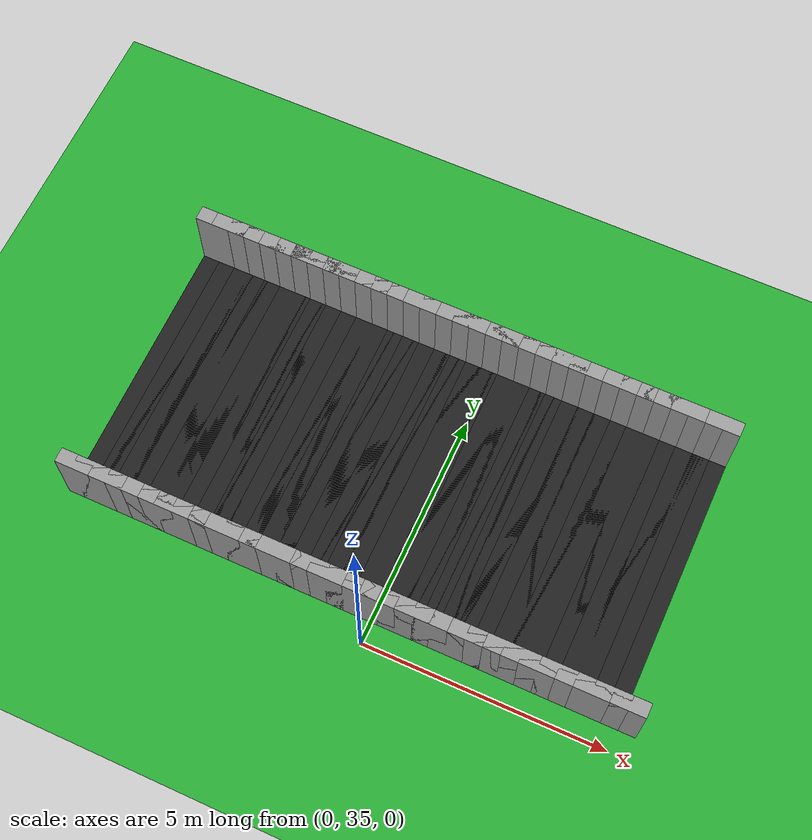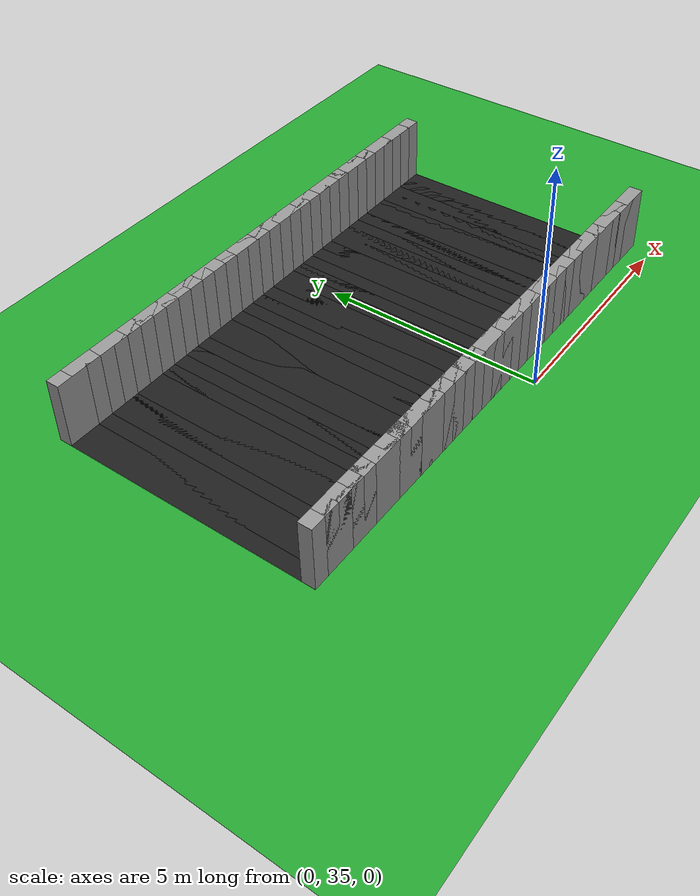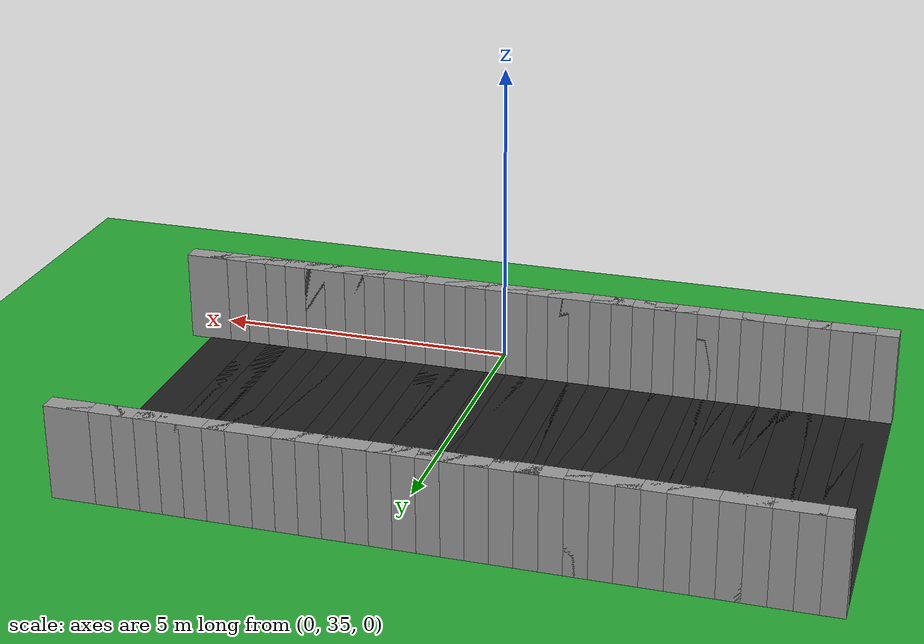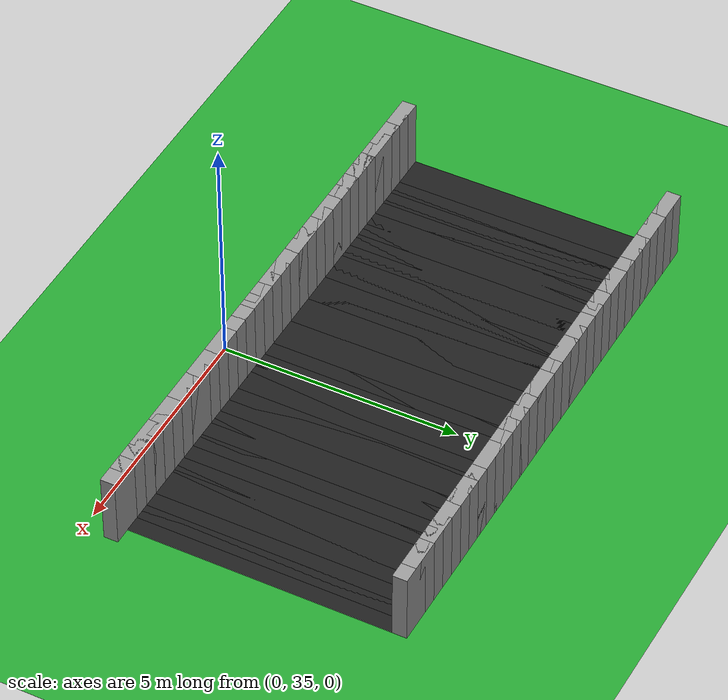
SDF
<sdf version="1.6">
 <world name="loop_speedloop">
  <include><uri>model://sun</uri></include>
  <model name="ground_plane">
   <static>true</static>
   <link name="link">
    <collision name="collision">
     <surface><friction><ode><mu>100</mu><mu2>50</mu2></ode></friction></surface>
     <geometry><plane><normal>0 0 1</normal><size>120 120</size></plane></geometry>
    </collision>
    <visual name="visual">
     <geometry><plane><normal>0 0 1</normal><size>120 120</size></plane></geometry>
     <material>
      <script><uri>file://media/materials/scripts/gazebo.material</uri><name>Gazebo/Green</name></script>
     </material>
    </visual>
   </link>
  </model>
  <model name="curbL_338">
   <static>true</static>
   <pose>5.026 35.602 0.750 0 0 3.14159</pose>
   <link name="link">
    <collision name="collision"><geometry><box><size>0.710 0.300 1.500</size></box></geometry></collision>
    <visual name="visual">
     <geometry><box><size>0.710 0.300 1.500</size></box></geometry>
     <material>
      <script><uri>file://media/materials/scripts/gazebo.material</uri><name>Gazebo/Grey</name></script>
     </material>
    </visual>
   </link>
  </model>
  <model name="asphalt_339">
   <static>true</static>
   <pose>4.676 38.502 0.005 0 0 3.14159</pose>
   <link name="link">
    <visual name="visual">
     <geometry><box><size>0.710 5.500 0.010</size></box></geometry>
     <material>
      <script><uri>file://media/materials/scripts/gazebo.material</uri><name>Gazebo/Black</name></script>
     </material>
    </visual>
   </link>
  </model>
  <model name="curbL_339">
   <static>true</static>
   <pose>4.676 35.602 0.750 0 0 3.14159</pose>
   <link name="link">
    <collision name="collision"><geometry><box><size>0.710 0.300 1.500</size></box></geometry></collision>
    <visual name="visual">
     <geometry><box><size>0.710 0.300 1.500</size></box></geometry>
     <material>
      <script><uri>file://media/materials/scripts/gazebo.material</uri><name>Gazebo/Grey</name></script>
     </material>
    </visual>
   </link>
  </model>
  <model name="curbR_339">
   <static>true</static>
   <pose>4.676 41.402 0.750 0 0 3.14159</pose>
   <link name="link">
    <collision name="collision"><geometry><box><size>0.710 0.300 1.500</size></box></geometry></collision>
    <visual name="visual">
     <geometry><box><size>0.710 0.300 1.500</size></box></geometry>
     <material>
      <script><uri>file://media/materials/scripts/gazebo.material</uri><name>Gazebo/Grey</name></script>
     </material>
    </visual>
   </link>
  </model>
  <model name="asphalt_340">
   <static>true</static>
   <pose>4.326 38.502 0.005 0 0 3.14159</pose>
   <link name="link">
    <visual name="visual">
     <geometry><box><size>0.710 5.500 0.010</size></box></geometry>
     <material>
      <script><uri>file://media/materials/scripts/gazebo.material</uri><name>Gazebo/Black</name></script>
     </material>
    </visual>
   </link>
  </model>
  <model name="curbL_340">
   <static>true</static>
   <pose>4.326 35.602 0.750 0 0 3.14159</pose>
   <link name="link">
    <collision name="collision"><geometry><box><size>0.710 0.300 1.500</size></box></geometry></collision>
    <visual name="visual">
     <geometry><box><size>0.710 0.300 1.500</size></box></geometry>
     <material>
      <script><uri>file://media/materials/scripts/gazebo.material</uri><name>Gazebo/Grey</name></script>
     </material>
    </visual>
   </link>
  </model>
  <model name="curbR_340">
   <static>true</static>
   <pose>4.326 41.402 0.750 0 0 3.14159</pose>
   <link name="link">
    <collision name="collision"><geometry><box><size>0.710 0.300 1.500</size></box></geometry></collision>
    <visual name="visual">
     <geometry><box><size>0.710 0.300 1.500</size></box></geometry>
     <material>
      <script><uri>file://media/materials/scripts/gazebo.material</uri><name>Gazebo/Grey</name></script>
     </material>
    </visual>
   </link>
  </model>
  <model name="asphalt_341">
   <static>true</static>
   <pose>3.976 38.502 0.005 0 0 3.14159</pose>
   <link name="link">
    <visual name="visual">
     <geometry><box><size>0.710 5.500 0.010</size></box></geometry>
     <material>
      <script><uri>file://media/materials/scripts/gazebo.material</uri><name>Gazebo/Black</name></script>
     </material>
    </visual>
   </link>
  </model>
  <model name="curbL_341">
   <static>true</static>
   <pose>3.976 35.602 0.750 0 0 3.14159</pose>
   <link name="link">
    <collision name="collision"><geometry><box><size>0.710 0.300 1.500</size></box></geometry></collision>
    <visual name="visual">
     <geometry><box><size>0.710 0.300 1.500</size></box></geometry>
     <material>
      <script><uri>file://media/materials/scripts/gazebo.material</uri><name>Gazebo/Grey</name></script>
     </material>
    </visual>
   </link>
  </model>
  <model name="curbR_341">
   <static>true</static>
   <pose>3.976 41.402 0.750 0 0 3.14159</pose>
   <link name="link">
    <collision name="collision"><geometry><box><size>0.710 0.300 1.500</size></box></geometry></collision>
    <visual name="visual">
     <geometry><box><size>0.710 0.300 1.500</size></box></geometry>
     <material>
      <script><uri>file://media/materials/scripts/gazebo.material</uri><name>Gazebo/Grey</name></script>
     </material>
    </visual>
   </link>
  </model>
  <model name="asphalt_342">
   <static>true</static>
   <pose>3.626 38.502 0.005 0 0 3.14159</pose>
   <link name="link">
    <visual name="visual">
     <geometry><box><size>0.710 5.500 0.010</size></box></geometry>
     <material>
      <script><uri>file://media/materials/scripts/gazebo.material</uri><name>Gazebo/Black</name></script>
     </material>
    </visual>
   </link>
  </model>
  <model name="curbL_342">
   <static>true</static>
   <pose>3.626 35.602 0.750 0 0 3.14159</pose>
   <link name="link">
    <collision name="collision"><geometry><box><size>0.710 0.300 1.500</size></box></geometry></collision>
    <visual name="visual">
     <geometry><box><size>0.710 0.300 1.500</size></box></geometry>
     <material>
      <script><uri>file://media/materials/scripts/gazebo.material</uri><name>Gazebo/Grey</name></script>
     </material>
    </visual>
   </link>
  </model>
  <model name="curbR_342">
   <static>true</static>
   <pose>3.626 41.402 0.750 0 0 3.14159</pose>
   <link name="link">
    <collision name="collision"><geometry><box><size>0.710 0.300 1.500</size></box></geometry></collision>
    <visual name="visual">
     <geometry><box><size>0.710 0.300 1.500</size></box></geometry>
     <material>
      <script><uri>file://media/materials/scripts/gazebo.material</uri><name>Gazebo/Grey</name></script>
     </material>
    </visual>
   </link>
  </model>
  <model name="asphalt_343">
   <static>true</static>
   <pose>3.276 38.502 0.005 0 0 3.14159</pose>
   <link name="link">
    <visual name="visual">
     <geometry><box><size>0.710 5.500 0.010</size></box></geometry>
     <material>
      <script><uri>file://media/materials/scripts/gazebo.material</uri><name>Gazebo/Black</name></script>
     </material>
    </visual>
   </link>
  </model>
  <model name="curbL_343">
   <static>true</static>
   <pose>3.276 35.602 0.750 0 0 3.14159</pose>
   <link name="link">
    <collision name="collision"><geometry><box><size>0.710 0.300 1.500</size></box></geometry></collision>
    <visual name="visual">
     <geometry><box><size>0.710 0.300 1.500</size></box></geometry>
     <material>
      <script><uri>file://media/materials/scripts/gazebo.material</uri><name>Gazebo/Grey</name></script>
     </material>
    </visual>
   </link>
  </model>
  <model name="curbR_343">
   <static>true</static>
   <pose>3.276 41.402 0.750 0 0 3.14159</pose>
   <link name="link">
    <collision name="collision"><geometry><box><size>0.710 0.300 1.500</size></box></geometry></collision>
    <visual name="visual">
     <geometry><box><size>0.710 0.300 1.500</size></box></geometry>
     <material>
      <script><uri>file://media/materials/scripts/gazebo.material</uri><name>Gazebo/Grey</name></script>
     </material>
    </visual>
   </link>
  </model>
  <model name="asphalt_344">
   <static>true</static>
   <pose>2.926 38.502 0.005 0 0 3.14159</pose>
   <link name="link">
    <visual name="visual">
     <geometry><box><size>0.710 5.500 0.010</size></box></geometry>
     <material>
      <script><uri>file://media/materials/scripts/gazebo.material</uri><name>Gazebo/Black</name></script>
     </material>
    </visual>
   </link>
  </model>
  <model name="curbL_344">
   <static>true</static>
   <pose>2.926 35.602 0.750 0 0 3.14159</pose>
   <link name="link">
    <collision name="collision"><geometry><box><size>0.710 0.300 1.500</size></box></geometry></collision>
    <visual name="visual">
     <geometry><box><size>0.710 0.300 1.500</size></box></geometry>
     <material>
      <script><uri>file://media/materials/scripts/gazebo.material</uri><name>Gazebo/Grey</name></script>
     </material>
    </visual>
   </link>
  </model>
  <model name="curbR_344">
   <static>true</static>
   <pose>2.926 41.402 0.750 0 0 3.14159</pose>
   <link name="link">
    <collision name="collision"><geometry><box><size>0.710 0.300 1.500</size></box></geometry></collision>
    <visual name="visual">
     <geometry><box><size>0.710 0.300 1.500</size></box></geometry>
     <material>
      <script><uri>file://media/materials/scripts/gazebo.material</uri><name>Gazebo/Grey</name></script>
     </material>
    </visual>
   </link>
  </model>
  <model name="asphalt_345">
   <static>true</static>
   <pose>2.576 38.502 0.005 0 0 3.14159</pose>
   <link name="link">
    <visual name="visual">
     <geometry><box><size>0.710 5.500 0.010</size></box></geometry>
     <material>
      <script><uri>file://media/materials/scripts/gazebo.material</uri><name>Gazebo/Black</name></script>
     </material>
    </visual>
   </link>
  </model>
  <model name="curbL_345">
   <static>true</static>
   <pose>2.576 35.602 0.750 0 0 3.14159</pose>
   <link name="link">
    <collision name="collision"><geometry><box><size>0.710 0.300 1.500</size></box></geometry></collision>
    <visual name="visual">
     <geometry><box><size>0.710 0.300 1.500</size></box></geometry>
     <material>
      <script><uri>file://media/materials/scripts/gazebo.material</uri><name>Gazebo/Grey</name></script>
     </material>
    </visual>
   </link>
  </model>
  <model name="curbR_345">
   <static>true</static>
   <pose>2.576 41.402 0.750 0 0 3.14159</pose>
   <link name="link">
    <collision name="collision"><geometry><box><size>0.710 0.300 1.500</size></box></geometry></collision>
    <visual name="visual">
     <geometry><box><size>0.710 0.300 1.500</size></box></geometry>
     <material>
      <script><uri>file://media/materials/scripts/gazebo.material</uri><name>Gazebo/Grey</name></script>
     </material>
    </visual>
   </link>
  </model>
  <model name="asphalt_346">
   <static>true</static>
   <pose>2.226 38.502 0.005 0 0 3.14159</pose>
   <link name="link">
    <visual name="visual">
     <geometry><box><size>0.710 5.500 0.010</size></box></geometry>
     <material>
      <script><uri>file://media/materials/scripts/gazebo.material</uri><name>Gazebo/Black</name></script>
     </material>
    </visual>
   </link>
  </model>
  <model name="curbL_346">
   <static>true</static>
   <pose>2.226 35.602 0.750 0 0 3.14159</pose>
   <link name="link">
    <collision name="collision"><geometry><box><size>0.710 0.300 1.500</size></box></geometry></collision>
    <visual name="visual">
     <geometry><box><size>0.710 0.300 1.500</size></box></geometry>
     <material>
      <script><uri>file://media/materials/scripts/gazebo.material</uri><name>Gazebo/Grey</name></script>
     </material>
    </visual>
   </link>
  </model>
  <model name="curbR_346">
   <static>true</static>
   <pose>2.226 41.402 0.750 0 0 3.14159</pose>
   <link name="link">
    <collision name="collision"><geometry><box><size>0.710 0.300 1.500</size></box></geometry></collision>
    <visual name="visual">
     <geometry><box><size>0.710 0.300 1.500</size></box></geometry>
     <material>
      <script><uri>file://media/materials/scripts/gazebo.material</uri><name>Gazebo/Grey</name></script>
     </material>
    </visual>
   </link>
  </model>
  <model name="asphalt_347">
   <static>true</static>
   <pose>1.876 38.502 0.005 0 0 3.14159</pose>
   <link name="link">
    <visual name="visual">
     <geometry><box><size>0.710 5.500 0.010</size></box></geometry>
     <material>
      <script><uri>file://media/materials/scripts/gazebo.material</uri><name>Gazebo/Black</name></script>
     </material>
    </visual>
   </link>
  </model>
  <model name="curbL_347">
   <static>true</static>
   <pose>1.876 35.602 0.750 0 0 3.14159</pose>
   <link name="link">
    <collision name="collision"><geometry><box><size>0.710 0.300 1.500</size></box></geometry></collision>
    <visual name="visual">
     <geometry><box><size>0.710 0.300 1.500</size></box></geometry>
     <material>
      <script><uri>file://media/materials/scripts/gazebo.material</uri><name>Gazebo/Grey</name></script>
     </material>
    </visual>
   </link>
  </model>
  <model name="curbR_347">
   <static>true</static>
   <pose>1.876 41.402 0.750 0 0 3.14159</pose>
   <link name="link">
    <collision name="collision"><geometry><box><size>0.710 0.300 1.500</size></box></geometry></collision>
    <visual name="visual">
     <geometry><box><size>0.710 0.300 1.500</size></box></geometry>
     <material>
      <script><uri>file://media/materials/scripts/gazebo.material</uri><name>Gazebo/Grey</name></script>
     </material>
    </visual>
   </link>
  </model>
  <model name="asphalt_348">
   <static>true</static>
   <pose>1.526 38.502 0.005 0 0 3.14159</pose>
   <link name="link">
    <visual name="visual">
     <geometry><box><size>0.710 5.500 0.010</size></box></geometry>
     <material>
      <script><uri>file://media/materials/scripts/gazebo.material</uri><name>Gazebo/Black</name></script>
     </material>
    </visual>
   </link>
  </model>
  <model name="curbL_348">
   <static>true</static>
   <pose>1.526 35.602 0.750 0 0 3.14159</pose>
   <link name="link">
    <collision name="collision"><geometry><box><size>0.710 0.300 1.500</size></box></geometry></collision>
    <visual name="visual">
     <geometry><box><size>0.710 0.300 1.500</size></box></geometry>
     <material>
      <script><uri>file://media/materials/scripts/gazebo.material</uri><name>Gazebo/Grey</name></script>
     </material>
    </visual>
   </link>
  </model>
  <model name="curbR_348">
   <static>true</static>
   <pose>1.526 41.402 0.750 0 0 3.14159</pose>
   <link name="link">
    <collision name="collision"><geometry><box><size>0.710 0.300 1.500</size></box></geometry></collision>
    <visual name="visual">
     <geometry><box><size>0.710 0.300 1.500</size></box></geometry>
     <material>
      <script><uri>file://media/materials/scripts/gazebo.material</uri><name>Gazebo/Grey</name></script>
     </material>
    </visual>
   </link>
  </model>
  <model name="asphalt_349">
   <static>true</static>
   <pose>1.176 38.502 0.005 0 0 3.14159</pose>
   <link name="link">
    <visual name="visual">
     <geometry><box><size>0.710 5.500 0.010</size></box></geometry>
     <material>
      <script><uri>file://media/materials/scripts/gazebo.material</uri><name>Gazebo/Black</name></script>
     </material>
    </visual>
   </link>
  </model>
  <model name="curbL_349">
   <static>true</static>
   <pose>1.176 35.602 0.750 0 0 3.14159</pose>
   <link name="link">
    <collision name="collision"><geometry><box><size>0.710 0.300 1.500</size></box></geometry></collision>
    <visual name="visual">
     <geometry><box><size>0.710 0.300 1.500</size></box></geometry>
     <material>
      <script><uri>file://media/materials/scripts/gazebo.material</uri><name>Gazebo/Grey</name></script>
     </material>
    </visual>
   </link>
  </model>
  <model name="curbR_349">
   <static>true</static>
   <pose>1.176 41.402 0.750 0 0 3.14159</pose>
   <link name="link">
    <collision name="collision"><geometry><box><size>0.710 0.300 1.500</size></box></geometry></collision>
    <visual name="visual">
     <geometry><box><size>0.710 0.300 1.500</size></box></geometry>
     <material>
      <script><uri>file://media/materials/scripts/gazebo.material</uri><name>Gazebo/Grey</name></script>
     </material>
    </visual>
   </link>
  </model>
  <model name="asphalt_350">
   <static>true</static>
   <pose>0.826 38.502 0.005 0 0 3.14159</pose>
   <link name="link">
    <visual name="visual">
     <geometry><box><size>0.710 5.500 0.010</size></box></geometry>
     <material>
      <script><uri>file://media/materials/scripts/gazebo.material</uri><name>Gazebo/Black</name></script>
     </material>
    </visual>
   </link>
  </model>
  <model name="curbL_350">
   <static>true</static>
   <pose>0.826 35.602 0.750 0 0 3.14159</pose>
   <link name="link">
    <collision name="collision"><geometry><box><size>0.710 0.300 1.500</size></box></geometry></collision>
    <visual name="visual">
     <geometry><box><size>0.710 0.300 1.500</size></box></geometry>
     <material>
      <script><uri>file://media/materials/scripts/gazebo.material</uri><name>Gazebo/Grey</name></script>
     </material>
    </visual>
   </link>
  </model>
  <model name="curbR_350">
   <static>true</static>
   <pose>0.826 41.402 0.750 0 0 3.14159</pose>
   <link name="link">
    <collision name="collision"><geometry><box><size>0.710 0.300 1.500</size></box></geometry></collision>
    <visual name="visual">
     <geometry><box><size>0.710 0.300 1.500</size></box></geometry>
     <material>
      <script><uri>file://media/materials/scripts/gazebo.material</uri><name>Gazebo/Grey</name></script>
     </material>
    </visual>
   </link>
  </model>
  <model name="asphalt_351">
   <static>true</static>
   <pose>0.476 38.502 0.005 0 0 3.14159</pose>
   <link name="link">
    <visual name="visual">
     <geometry><box><size>0.710 5.500 0.010</size></box></geometry>
     <material>
      <script><uri>file://media/materials/scripts/gazebo.material</uri><name>Gazebo/Black</name></script>
     </material>
    </visual>
   </link>
  </model>
  <model name="curbL_351">
   <static>true</static>
   <pose>0.476 35.602 0.750 0 0 3.14159</pose>
   <link name="link">
    <collision name="collision"><geometry><box><size>0.710 0.300 1.500</size></box></geometry></collision>
    <visual name="visual">
     <geometry><box><size>0.710 0.300 1.500</size></box></geometry>
     <material>
      <script><uri>file://media/materials/scripts/gazebo.material</uri><name>Gazebo/Grey</name></script>
     </material>
    </visual>
   </link>
  </model>
  <model name="curbR_351">
   <static>true</static>
   <pose>0.476 41.402 0.750 0 0 3.14159</pose>
   <link name="link">
    <collision name="collision"><geometry><box><size>0.710 0.300 1.500</size></box></geometry></collision>
    <visual name="visual">
     <geometry><box><size>0.710 0.300 1.500</size></box></geometry>
     <material>
      <script><uri>file://media/materials/scripts/gazebo.material</uri><name>Gazebo/Grey</name></script>
     </material>
    </visual>
   </link>
  </model>
  <model name="asphalt_352">
   <static>true</static>
   <pose>0.126 38.502 0.005 0 0 3.14159</pose>
   <link name="link">
    <visual name="visual">
     <geometry><box><size>0.710 5.500 0.010</size></box></geometry>
     <material>
      <script><uri>file://media/materials/scripts/gazebo.material</uri><name>Gazebo/Black</name></script>
     </material>
    </visual>
   </link>
  </model>
  <model name="curbL_352">
   <static>true</static>
   <pose>0.126 35.602 0.750 0 0 3.14159</pose>
   <link name="link">
    <collision name="collision"><geometry><box><size>0.710 0.300 1.500</size></box></geometry></collision>
    <visual name="visual">
     <geometry><box><size>0.710 0.300 1.500</size></box></geometry>
     <material>
      <script><uri>file://media/materials/scripts/gazebo.material</uri><name>Gazebo/Grey</name></script>
     </material>
    </visual>
   </link>
  </model>
  <model name="curbR_352">
   <static>true</static>
   <pose>0.126 41.402 0.750 0 0 3.14159</pose>
   <link name="link">
    <collision name="collision"><geometry><box><size>0.710 0.300 1.500</size></box></geometry></collision>
    <visual name="visual">
     <geometry><box><size>0.710 0.300 1.500</size></box></geometry>
     <material>
      <script><uri>file://media/materials/scripts/gazebo.material</uri><name>Gazebo/Grey</name></script>
     </material>
    </visual>
   </link>
  </model>
  <model name="asphalt_353">
   <static>true</static>
   <pose>-0.224 38.502 0.005 0 0 3.14159</pose>
   <link name="link">
    <visual name="visual">
     <geometry><box><size>0.710 5.500 0.010</size></box></geometry>
     <material>
      <script><uri>file://media/materials/scripts/gazebo.material</uri><name>Gazebo/Black</name></script>
     </material>
    </visual>
   </link>
  </model>
  <model name="curbL_353">
   <static>true</static>
   <pose>-0.224 35.602 0.750 0 0 3.14159</pose>
   <link name="link">
    <collision name="collision"><geometry><box><size>0.710 0.300 1.500</size></box></geometry></collision>
    <visual name="visual">
     <geometry><box><size>0.710 0.300 1.500</size></box></geometry>
     <material>
      <script><uri>file://media/materials/scripts/gazebo.material</uri><name>Gazebo/Grey</name></script>
     </material>
    </visual>
   </link>
  </model>
  <model name="curbR_353">
   <static>true</static>
   <pose>-0.224 41.402 0.750 0 0 3.14159</pose>
   <link name="link">
    <collision name="collision"><geometry><box><size>0.710 0.300 1.500</size></box></geometry></collision>
    <visual name="visual">
     <geometry><box><size>0.710 0.300 1.500</size></box></geometry>
     <material>
      <script><uri>file://media/materials/scripts/gazebo.material</uri><name>Gazebo/Grey</name></script>
     </material>
    </visual>
   </link>
  </model>
  <model name="asphalt_354">
   <static>true</static>
   <pose>-0.574 38.502 0.005 0 0 3.14159</pose>
   <link name="link">
    <visual name="visual">
     <geometry><box><size>0.710 5.500 0.010</size></box></geometry>
     <material>
      <script><uri>file://media/materials/scripts/gazebo.material</uri><name>Gazebo/Black</name></script>
     </material>
    </visual>
   </link>
  </model>
  <model name="curbL_354">
   <static>true</static>
   <pose>-0.574 35.602 0.750 0 0 3.14159</pose>
   <link name="link">
    <collision name="collision"><geometry><box><size>0.710 0.300 1.500</size></box></geometry></collision>
    <visual name="visual">
     <geometry><box><size>0.710 0.300 1.500</size></box></geometry>
     <material>
      <script><uri>file://media/materials/scripts/gazebo.material</uri><name>Gazebo/Grey</name></script>
     </material>
    </visual>
   </link>
  </model>
  <model name="curbR_354">
   <static>true</static>
   <pose>-0.574 41.402 0.750 0 0 3.14159</pose>
   <link name="link">
    <collision name="collision"><geometry><box><size>0.710 0.300 1.500</size></box></geometry></collision>
    <visual name="visual">
     <geometry><box><size>0.710 0.300 1.500</size></box></geometry>
     <material>
      <script><uri>file://media/materials/scripts/gazebo.material</uri><name>Gazebo/Grey</name></script>
     </material>
    </visual>
   </link>
  </model>
  <model name="asphalt_355">
   <static>true</static>
   <pose>-0.924 38.502 0.005 0 0 3.14159</pose>
   <link name="link">
    <visual name="visual">
     <geometry><box><size>0.710 5.500 0.010</size></box></geometry>
     <material>
      <script><uri>file://media/materials/scripts/gazebo.material</uri><name>Gazebo/Black</name></script>
     </material>
    </visual>
   </link>
  </model>
  <model name="curbL_355">
   <static>true</static>
   <pose>-0.924 35.602 0.750 0 0 3.14159</pose>
   <link name="link">
    <collision name="collision"><geometry><box><size>0.710 0.300 1.500</size></box></geometry></collision>
    <visual name="visual">
     <geometry><box><size>0.710 0.300 1.500</size></box></geometry>
     <material>
      <script><uri>file://media/materials/scripts/gazebo.material</uri><name>Gazebo/Grey</name></script>
     </material>
    </visual>
   </link>
  </model>
  <model name="curbR_355">
   <static>true</static>
   <pose>-0.924 41.402 0.750 0 0 3.14159</pose>
   <link name="link">
    <collision name="collision"><geometry><box><size>0.710 0.300 1.500</size></box></geometry></collision>
    <visual name="visual">
     <geometry><box><size>0.710 0.300 1.500</size></box></geometry>
     <material>
      <script><uri>file://media/materials/scripts/gazebo.material</uri><name>Gazebo/Grey</name></script>
     </material>
    </visual>
   </link>
  </model>
  <model name="asphalt_356">
   <static>true</static>
   <pose>-1.274 38.502 0.005 0 0 3.14159</pose>
   <link name="link">
    <visual name="visual">
     <geometry><box><size>0.710 5.500 0.010</size></box></geometry>
     <material>
      <script><uri>file://media/materials/scripts/gazebo.material</uri><name>Gazebo/Black</name></script>
     </material>
    </visual>
   </link>
  </model>
  <model name="curbL_356">
   <static>true</static>
   <pose>-1.274 35.602 0.750 0 0 3.14159</pose>
   <link name="link">
    <collision name="collision"><geometry><box><size>0.710 0.300 1.500</size></box></geometry></collision>
    <visual name="visual">
     <geometry><box><size>0.710 0.300 1.500</size></box></geometry>
     <material>
      <script><uri>file://media/materials/scripts/gazebo.material</uri><name>Gazebo/Grey</name></script>
     </material>
    </visual>
   </link>
  </model>
  <model name="curbR_356">
   <static>true</static>
   <pose>-1.274 41.402 0.750 0 0 3.14159</pose>
   <link name="link">
    <collision name="collision"><geometry><box><size>0.710 0.300 1.500</size></box></geometry></collision>
    <visual name="visual">
     <geometry><box><size>0.710 0.300 1.500</size></box></geometry>
     <material>
      <script><uri>file://media/materials/scripts/gazebo.material</uri><name>Gazebo/Grey</name></script>
     </material>
    </visual>
   </link>
  </model>
  <model name="asphalt_357">
   <static>true</static>
   <pose>-1.624 38.502 0.005 0 0 3.14159</pose>
   <link name="link">
    <visual name="visual">
     <geometry><box><size>0.710 5.500 0.010</size></box></geometry>
     <material>
      <script><uri>file://media/materials/scripts/gazebo.material</uri><name>Gazebo/Black</name></script>
     </material>
    </visual>
   </link>
  </model>
  <model name="curbL_357">
   <static>true</static>
   <pose>-1.624 35.602 0.750 0 0 3.14159</pose>
   <link name="link">
    <collision name="collision"><geometry><box><size>0.710 0.300 1.500</size></box></geometry></collision>
    <visual name="visual">
     <geometry><box><size>0.710 0.300 1.500</size></box></geometry>
     <material>
      <script><uri>file://media/materials/scripts/gazebo.material</uri><name>Gazebo/Grey</name></script>
     </material>
    </visual>
   </link>
  </model>
  <model name="curbR_357">
   <static>true</static>
   <pose>-1.624 41.402 0.750 0 0 3.14159</pose>
   <link name="link">
    <collision name="collision"><geometry><box><size>0.710 0.300 1.500</size></box></geometry></collision>
    <visual name="visual">
     <geometry><box><size>0.710 0.300 1.500</size></box></geometry>
     <material>
      <script><uri>file://media/materials/scripts/gazebo.material</uri><name>Gazebo/Grey</name></script>
     </material>
    </visual>
   </link>
  </model>
  <model name="asphalt_358">
   <static>true</static>
   <pose>-1.974 38.502 0.005 0 0 3.14159</pose>
   <link name="link">
    <visual name="visual">
     <geometry><box><size>0.710 5.500 0.010</size></box></geometry>
     <material>
      <script><uri>file://media/materials/scripts/gazebo.material</uri><name>Gazebo/Black</name></script>
     </material>
    </visual>
   </link>
  </model>
  <model name="curbL_358">
   <static>true</static>
   <pose>-1.974 35.602 0.750 0 0 3.14159</pose>
   <link name="link">
    <collision name="collision"><geometry><box><size>0.710 0.300 1.500</size></box></geometry></collision>
    <visual name="visual">
     <geometry><box><size>0.710 0.300 1.500</size></box></geometry>
     <material>
      <script><uri>file://media/materials/scripts/gazebo.material</uri><name>Gazebo/Grey</name></script>
     </material>
    </visual>
   </link>
  </model>
  <model name="curbR_358">
   <static>true</static>
   <pose>-1.974 41.402 0.750 0 0 3.14159</pose>
   <link name="link">
    <collision name="collision"><geometry><box><size>0.710 0.300 1.500</size></box></geometry></collision>
    <visual name="visual">
     <geometry><box><size>0.710 0.300 1.500</size></box></geometry>
     <material>
      <script><uri>file://media/materials/scripts/gazebo.material</uri><name>Gazebo/Grey</name></script>
     </material>
    </visual>
   </link>
  </model>
  <model name="asphalt_359">
   <static>true</static>
   <pose>-2.324 38.502 0.005 0 0 3.14159</pose>
   <link name="link">
    <visual name="visual">
     <geometry><box><size>0.710 5.500 0.010</size></box></geometry>
     <material>
      <script><uri>file://media/materials/scripts/gazebo.material</uri><name>Gazebo/Black</name></script>
     </material>
    </visual>
   </link>
  </model>
  <model name="curbL_359">
   <static>true</static>
   <pose>-2.324 35.602 0.750 0 0 3.14159</pose>
   <link name="link">
    <collision name="collision"><geometry><box><size>0.710 0.300 1.500</size></box></geometry></collision>
    <visual name="visual">
     <geometry><box><size>0.710 0.300 1.500</size></box></geometry>
     <material>
      <script><uri>file://media/materials/scripts/gazebo.material</uri><name>Gazebo/Grey</name></script>
     </material>
    </visual>
   </link>
  </model>
  <model name="curbR_359">
   <static>true</static>
   <pose>-2.324 41.402 0.750 0 0 3.14159</pose>
   <link name="link">
    <collision name="collision"><geometry><box><size>0.710 0.300 1.500</size></box></geometry></collision>
    <visual name="visual">
     <geometry><box><size>0.710 0.300 1.500</size></box></geometry>
     <material>
      <script><uri>file://media/materials/scripts/gazebo.material</uri><name>Gazebo/Grey</name></script>
     </material>
    </visual>
   </link>
  </model>
  <model name="asphalt_360">
   <static>true</static>
   <pose>-2.674 38.502 0.005 0 0 3.14159</pose>
   <link name="link">
    <visual name="visual">
     <geometry><box><size>0.710 5.500 0.010</size></box></geometry>
     <material>
      <script><uri>file://media/materials/scripts/gazebo.material</uri><name>Gazebo/Black</name></script>
     </material>
    </visual>
   </link>
  </model>
  <model name="curbL_360">
   <static>true</static>
   <pose>-2.674 35.602 0.750 0 0 3.14159</pose>
   <link name="link">
    <collision name="collision"><geometry><box><size>0.710 0.300 1.500</size></box></geometry></collision>
    <visual name="visual">
     <geometry><box><size>0.710 0.300 1.500</size></box></geometry>
     <material>
      <script><uri>file://media/materials/scripts/gazebo.material</uri><name>Gazebo/Grey</name></script>
     </material>
    </visual>
   </link>
  </model>
  <model name="curbR_360">
   <static>true</static>
   <pose>-2.674 41.402 0.750 0 0 3.14159</pose>
   <link name="link">
    <collision name="collision"><geometry><box><size>0.710 0.300 1.500</size></box></geometry></collision>
    <visual name="visual">
     <geometry><box><size>0.710 0.300 1.500</size></box></geometry>
     <material>
      <script><uri>file://media/materials/scripts/gazebo.material</uri><name>Gazebo/Grey</name></script>
     </material>
    </visual>
   </link>
  </model>
  <model name="asphalt_361">
   <static>true</static>
   <pose>-3.024 38.502 0.005 0 0 3.14159</pose>
   <link name="link">
    <visual name="visual">
     <geometry><box><size>0.710 5.500 0.010</size></box></geometry>
     <material>
      <script><uri>file://media/materials/scripts/gazebo.material</uri><name>Gazebo/Black</name></script>
     </material>
    </visual>
   </link>
  </model>
  <model name="curbL_361">
   <static>true</static>
   <pose>-3.024 35.602 0.750 0 0 3.14159</pose>
   <link name="link">
    <collision name="collision"><geometry><box><size>0.710 0.300 1.500</size></box></geometry></collision>
    <visual name="visual">
     <geometry><box><size>0.710 0.300 1.500</size></box></geometry>
     <material>
      <script><uri>file://media/materials/scripts/gazebo.material</uri><name>Gazebo/Grey</name></script>
     </material>
    </visual>
   </link>
  </model>
  <model name="curbR_361">
   <static>true</static>
   <pose>-3.024 41.402 0.750 0 0 3.14159</pose>
   <link name="link">
    <collision name="collision"><geometry><box><size>0.710 0.300 1.500</size></box></geometry></collision>
    <visual name="visual">
     <geometry><box><size>0.710 0.300 1.500</size></box></geometry>
     <material>
      <script><uri>file://media/materials/scripts/gazebo.material</uri><name>Gazebo/Grey</name></script>
     </material>
    </visual>
   </link>
  </model>
  <model name="asphalt_362">
   <static>true</static>
   <pose>-3.374 38.502 0.005 0 0 3.14159</pose>
   <link name="link">
    <visual name="visual">
     <geometry><box><size>0.710 5.500 0.010</size></box></geometry>
     <material>
      <script><uri>file://media/materials/scripts/gazebo.material</uri><name>Gazebo/Black</name></script>
     </material>
    </visual>
   </link>
  </model>
  <model name="curbL_362">
   <static>true</static>
   <pose>-3.374 35.602 0.750 0 0 3.14159</pose>
   <link name="link">
    <collision name="collision"><geometry><box><size>0.710 0.300 1.500</size></box></geometry></collision>
    <visual name="visual">
     <geometry><box><size>0.710 0.300 1.500</size></box></geometry>
     <material>
      <script><uri>file://media/materials/scripts/gazebo.material</uri><name>Gazebo/Grey</name></script>
     </material>
    </visual>
   </link>
  </model>
  <model name="curbR_362">
   <static>true</static>
   <pose>-3.374 41.402 0.750 0 0 3.14159</pose>
   <link name="link">
    <collision name="collision"><geometry><box><size>0.710 0.300 1.500</size></box></geometry></collision>
    <visual name="visual">
     <geometry><box><size>0.710 0.300 1.500</size></box></geometry>
     <material>
      <script><uri>file://media/materials/scripts/gazebo.material</uri><name>Gazebo/Grey</name></script>
     </material>
    </visual>
   </link>
  </model>
  <model name="asphalt_363">
   <static>true</static>
   <pose>-3.724 38.502 0.005 0 0 3.14159</pose>
   <link name="link">
    <visual name="visual">
     <geometry><box><size>0.710 5.500 0.010</size></box></geometry>
     <material>
      <script><uri>file://media/materials/scripts/gazebo.material</uri><name>Gazebo/Black</name></script>
     </material>
    </visual>
   </link>
  </model>
  <model name="curbL_363">
   <static>true</static>
   <pose>-3.724 35.602 0.750 0 0 3.14159</pose>
   <link name="link">
    <collision name="collision"><geometry><box><size>0.710 0.300 1.500</size></box></geometry></collision>
    <visual name="visual">
     <geometry><box><size>0.710 0.300 1.500</size></box></geometry>
     <material>
      <script><uri>file://media/materials/scripts/gazebo.material</uri><name>Gazebo/Grey</name></script>
     </material>
    </visual>
   </link>
  </model>
  <model name="curbR_363">
   <static>true</static>
   <pose>-3.724 41.402 0.750 0 0 3.14159</pose>
   <link name="link">
    <collision name="collision"><geometry><box><size>0.710 0.300 1.500</size></box></geometry></collision>
    <visual name="visual">
     <geometry><box><size>0.710 0.300 1.500</size></box></geometry>
     <material>
      <script><uri>file://media/materials/scripts/gazebo.material</uri><name>Gazebo/Grey</name></script>
     </material>
    </visual>
   </link>
  </model>
  <model name="asphalt_364">
   <static>true</static>
   <pose>-4.074 38.502 0.005 0 0 3.14159</pose>
   <link name="link">
    <visual name="visual">
     <geometry><box><size>0.710 5.500 0.010</size></box></geometry>
     <material>
      <script><uri>file://media/materials/scripts/gazebo.material</uri><name>Gazebo/Black</name></script>
     </material>
    </visual>
   </link>
  </model>
  <model name="curbL_364">
   <static>true</static>
   <pose>-4.074 35.602 0.750 0 0 3.14159</pose>
   <link name="link">
    <collision name="collision"><geometry><box><size>0.710 0.300 1.500</size></box></geometry></collision>
    <visual name="visual">
     <geometry><box><size>0.710 0.300 1.500</size></box></geometry>
     <material>
      <script><uri>file://media/materials/scripts/gazebo.material</uri><name>Gazebo/Grey</name></script>
     </material>
    </visual>
   </link>
  </model>
  <model name="curbR_364">
   <static>true</static>
   <pose>-4.074 41.402 0.750 0 0 3.14159</pose>
   <link name="link">
    <collision name="collision"><geometry><box><size>0.710 0.300 1.500</size></box></geometry></collision>
    <visual name="visual">
     <geometry><box><size>0.710 0.300 1.500</size></box></geometry>
     <material>
      <script><uri>file://media/materials/scripts/gazebo.material</uri><name>Gazebo/Grey</name></script>
     </material>
    </visual>
   </link>
  </model>
  <model name="asphalt_365">
   <static>true</static>
   <pose>-4.424 38.502 0.005 0 0 3.14159</pose>
   <link name="link">
    <visual name="visual">
     <geometry><box><size>0.710 5.500 0.010</size></box></geometry>
     <material>
      <script><uri>file://media/materials/scripts/gazebo.material</uri><name>Gazebo/Black</name></script>
     </material>
    </visual>
   </link>
  </model>
  <model name="curbL_365">
   <static>true</static>
   <pose>-4.424 35.602 0.750 0 0 3.14159</pose>
   <link name="link">
    <collision name="collision"><geometry><box><size>0.710 0.300 1.500</size></box></geometry></collision>
    <visual name="visual">
     <geometry><box><size>0.710 0.300 1.500</size></box></geometry>
     <material>
      <script><uri>file://media/materials/scripts/gazebo.material</uri><name>Gazebo/Grey</name></script>
     </material>
    </visual>
   </link>
  </model>
  <model name="curbR_365">
   <static>true</static>
   <pose>-4.424 41.402 0.750 0 0 3.14159</pose>
   <link name="link">
    <collision name="collision"><geometry><box><size>0.710 0.300 1.500</size></box></geometry></collision>
    <visual name="visual">
     <geometry><box><size>0.710 0.300 1.500</size></box></geometry>
     <material>
      <script><uri>file://media/materials/scripts/gazebo.material</uri><name>Gazebo/Grey</name></script>
     </material>
    </visual>
   </link>
  </model>
  <model name="asphalt_366">
   <static>true</static>
   <pose>-4.774 38.502 0.005 0 0 3.14159</pose>
   <link name="link">
    <visual name="visual">
     <geometry><box><size>0.710 5.500 0.010</size></box></geometry>
     <material>
      <script><uri>file://media/materials/scripts/gazebo.material</uri><name>Gazebo/Black</name></script>
     </material>
    </visual>
   </link>
  </model>
  <model name="curbL_366">
   <static>true</static>
   <pose>-4.774 35.602 0.750 0 0 3.14159</pose>
   <link name="link">
    <collision name="collision"><geometry><box><size>0.710 0.300 1.500</size></box></geometry></collision>
    <visual name="visual">
     <geometry><box><size>0.710 0.300 1.500</size></box></geometry>
     <material>
      <script><uri>file://media/materials/scripts/gazebo.material</uri><name>Gazebo/Grey</name></script>
     </material>
    </visual>
   </link>
  </model>
  <model name="curbR_366">
   <static>true</static>
   <pose>-4.774 41.402 0.750 0 0 3.14159</pose>
   <link name="link">
    <collision name="collision"><geometry><box><size>0.710 0.300 1.500</size></box></geometry></collision>
    <visual name="visual">
     <geometry><box><size>0.710 0.300 1.500</size></box></geometry>
     <material>
      <script><uri>file://media/materials/scripts/gazebo.material</uri><name>Gazebo/Grey</name></script>
     </material>
    </visual>
   </link>
  </model>
  <model name="asphalt_367">
   <static>true</static>
   <pose>-5.124 38.502 0.005 0 0 3.14159</pose>
   <link name="link">
    <visual name="visual">
     <geometry><box><size>0.710 5.500 0.010</size></box></geometry>
     <material>
      <script><uri>file://media/materials/scripts/gazebo.material</uri><name>Gazebo/Black</name></script>
     </material>
    </visual>
   </link>
  </model>
  <model name="curbL_367">
   <static>true</static>
   <pose>-5.124 35.602 0.750 0 0 3.14159</pose>
   <link name="link">
    <collision name="collision"><geometry><box><size>0.710 0.300 1.500</size></box></geometry></collision>
    <visual name="visual">
     <geometry><box><size>0.710 0.300 1.500</size></box></geometry>
     <material>
      <script><uri>file://media/materials/scripts/gazebo.material</uri><name>Gazebo/Grey</name></script>
     </material>
    </visual>
   </link>
  </model>
  <model name="curbR_367">
   <static>true</static>
   <pose>-5.124 41.402 0.750 0 0 3.14159</pose>
   <link name="link">
    <collision name="collision"><geometry><box><size>0.710 0.300 1.500</size></box></geometry></collision>
    <visual name="visual">
     <geometry><box><size>0.710 0.300 1.500</size></box></geometry>
     <material>
      <script><uri>file://media/materials/scripts/gazebo.material</uri><name>Gazebo/Grey</name></script>
     </material>
    </visual>
   </link>
  </model>
  <model name="asphalt_368">
   <static>true</static>
   <pose>-5.474 38.502 0.005 0 0 3.14159</pose>
   <link name="link">
    <visual name="visual">
     <geometry><box><size>0.710 5.500 0.010</size></box></geometry>
     <material>
      <script><uri>file://media/materials/scripts/gazebo.material</uri><name>Gazebo/Black</name></script>
     </material>
    </visual>
   </link>
  </model>
  <model name="curbL_368">
   <static>true</static>
   <pose>-5.474 35.602 0.750 0 0 3.14159</pose>
   <link name="link">
    <collision name="collision"><geometry><box><size>0.710 0.300 1.500</size></box></geometry></collision>
    <visual name="visual">
     <geometry><box><size>0.710 0.300 1.500</size></box></geometry>
     <material>
      <script><uri>file://media/materials/scripts/gazebo.material</uri><name>Gazebo/Grey</name></script>
     </material>
    </visual>
   </link>
  </model>
  <model name="curbR_368">
   <static>true</static>
   <pose>-5.474 41.402 0.750 0 0 3.14159</pose>
   <link name="link">
    <collision name="collision"><geometry><box><size>0.710 0.300 1.500</size></box></geometry></collision>
    <visual name="visual">
     <geometry><box><size>0.710 0.300 1.500</size></box></geometry>
     <material>
      <script><uri>file://media/materials/scripts/gazebo.material</uri><name>Gazebo/Grey</name></script>
     </material>
    </visual>
   </link>
  </model>
  <model name="asphalt_369">
   <static>true</static>
   <pose>-5.824 38.502 0.005 0 0 3.14159</pose>
   <link name="link">
    <visual name="visual">
     <geometry><box><size>0.710 5.500 0.010</size></box></geometry>
     <material>
      <script><uri>file://media/materials/scripts/gazebo.material</uri><name>Gazebo/Black</name></script>
     </material>
    </visual>
   </link>
  </model>
  <model name="curbL_369">
   <static>true</static>
   <pose>-5.824 35.602 0.750 0 0 3.14159</pose>
   <link name="link">
    <collision name="collision"><geometry><box><size>0.710 0.300 1.500</size></box></geometry></collision>
    <visual name="visual">
     <geometry><box><size>0.710 0.300 1.500</size></box></geometry>
     <material>
      <script><uri>file://media/materials/scripts/gazebo.material</uri><name>Gazebo/Grey</name></script>
     </material>
    </visual>
   </link>
  </model>
  <model name="curbR_369">
   <static>true</static>
   <pose>-5.824 41.402 0.750 0 0 3.14159</pose>
   <link name="link">
    <collision name="collision"><geometry><box><size>0.710 0.300 1.500</size></box></geometry></collision>
    <visual name="visual">
     <geometry><box><size>0.710 0.300 1.500</size></box></geometry>
     <material>
      <script><uri>file://media/materials/scripts/gazebo.material</uri><name>Gazebo/Grey</name></script>
     </material>
    </visual>
   </link>
  </model>
  <model name="asphalt_370">
   <static>true</static>
   <pose>-6.174 38.502 0.005 0 0 3.14159</pose>
   <link name="link">
    <visual name="visual">
     <geometry><box><size>0.710 5.500 0.010</size></box></geometry>
     <material>
      <script><uri>file://media/materials/scripts/gazebo.material</uri><name>Gazebo/Black</name></script>
     </material>
    </visual>
   </link>
  </model>
  <model name="curbL_370">
   <static>true</static>
   <pose>-6.174 35.602 0.750 0 0 3.14159</pose>
   <link name="link">
    <collision name="collision"><geometry><box><size>0.710 0.300 1.500</size></box></geometry></collision>
    <visual name="visual">
     <geometry><box><size>0.710 0.300 1.500</size></box></geometry>
     <material>
      <script><uri>file://media/materials/scripts/gazebo.material</uri><name>Gazebo/Grey</name></script>
     </material>
    </visual>
   </link>
  </model>
  <model name="curbR_370">
   <static>true</static>
   <pose>-6.174 41.402 0.750 0 0 3.14159</pose>
   <link name="link">
    <collision name="collision"><geometry><box><size>0.710 0.300 1.500</size></box></geometry></collision>
    <visual name="visual">
     <geometry><box><size>0.710 0.300 1.500</size></box></geometry>
     <material>
      <script><uri>file://media/materials/scripts/gazebo.material</uri><name>Gazebo/Grey</name></script>
     </material>
    </visual>
   </link>
  </model>
 </world>
</sdf>
